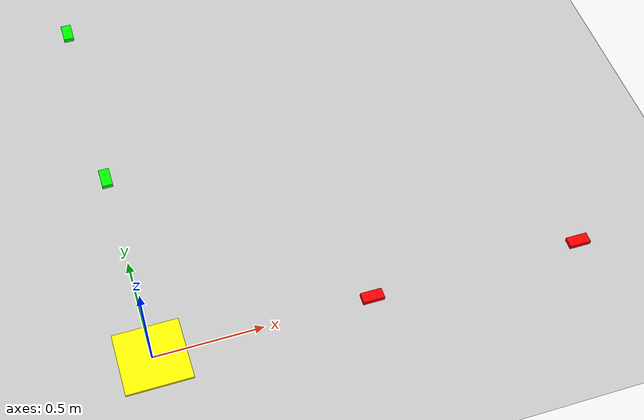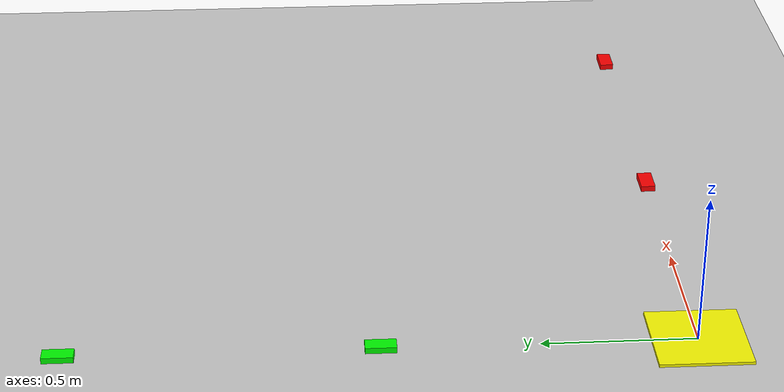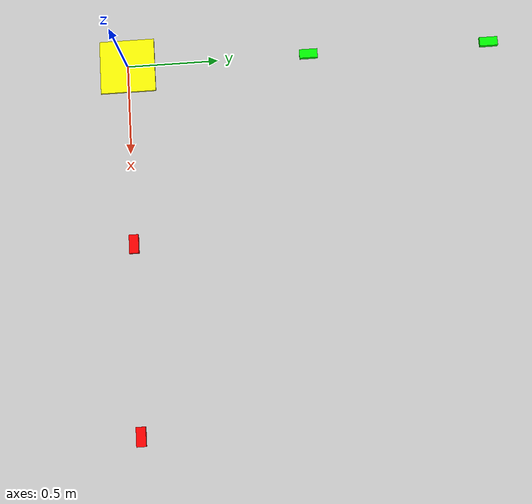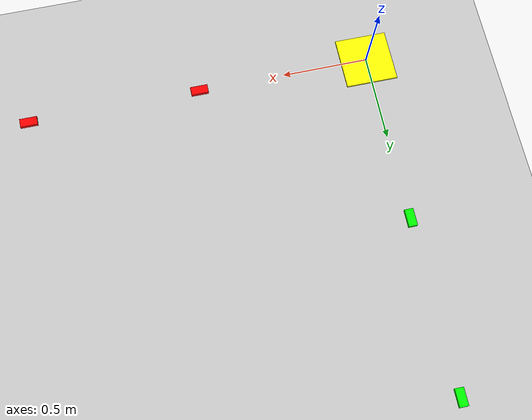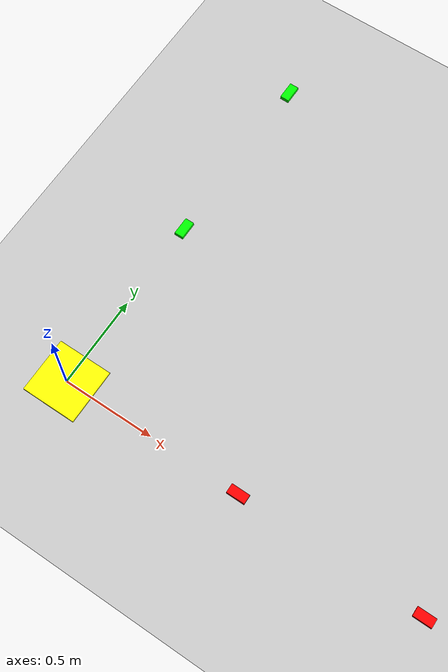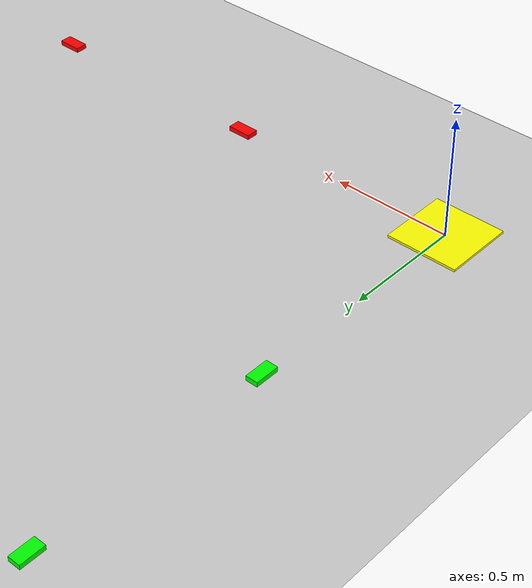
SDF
<?xml version="1.0" ?>
<sdf version="1.6">
  <world name="test_kinematics">

    <physics type="ode">
      <real_time_update_rate>1000.0</real_time_update_rate>
      <max_step_size>0.001</max_step_size>
      <real_time_factor>1.0</real_time_factor>
    </physics>

    <scene>
      <ambient>0.6 0.6 0.6 1</ambient>
      <background>0.8 0.8 0.8 1</background>
      <shadows>false</shadows>
    </scene>

    <light name="sun" type="directional">
      <cast_shadows>false</cast_shadows>
      <pose>0 0 10 0 0 0</pose>
      <diffuse>0.9 0.9 0.9 1</diffuse>
      <specular>0.1 0.1 0.1 1</specular>
      <direction>0 0 -1</direction>
    </light>

    <!-- Düz zemin -->
    <include>
      <uri>model://ground_plane</uri>
    </include>

    <!--
      Referans işaretçileri: hangi yönde gittiğini görsel olarak kontrol etmek için
      X ekseni boyunca kırmızı çizgi (1m aralıklı bloklar)
    -->
    <model name="marker_x1">
      <static>true</static>
      <pose>1 0 0.01 0 0 0</pose>
      <link name="link">
        <visual name="v">
          <geometry><box><size>0.1 0.05 0.02</size></box></geometry>
          <material><ambient>1 0 0 1</ambient></material>
        </visual>
      </link>
    </model>

    <model name="marker_x2">
      <static>true</static>
      <pose>2 0 0.01 0 0 0</pose>
      <link name="link">
        <visual name="v">
          <geometry><box><size>0.1 0.05 0.02</size></box></geometry>
          <material><ambient>1 0 0 1</ambient></material>
        </visual>
      </link>
    </model>

    <model name="marker_y1">
      <static>true</static>
      <pose>0 1 0.01 0 0 0</pose>
      <link name="link">
        <visual name="v">
          <geometry><box><size>0.05 0.1 0.02</size></box></geometry>
          <material><ambient>0 1 0 1</ambient></material>
        </visual>
      </link>
    </model>

    <model name="marker_y2">
      <static>true</static>
      <pose>0 2 0.01 0 0 0</pose>
      <link name="link">
        <visual name="v">
          <geometry><box><size>0.05 0.1 0.02</size></box></geometry>
          <material><ambient>0 1 0 1</ambient></material>
        </visual>
      </link>
    </model>

    <!-- Başlangıç noktası işareti (sarı) -->
    <model name="marker_origin">
      <static>true</static>
      <pose>0 0 0.005 0 0 0</pose>
      <link name="link">
        <visual name="v">
          <geometry><box><size>0.3 0.3 0.01</size></box></geometry>
          <material><ambient>1 1 0 1</ambient></material>
        </visual>
      </link>
    </model>

    <gui fullscreen="0">
      <camera name="user_camera">
        <pose>0 -5 4 0 0.7 1.5708</pose>
        <view_controller>orbit</view_controller>
      </camera>
    </gui>

  </world>
</sdf>
